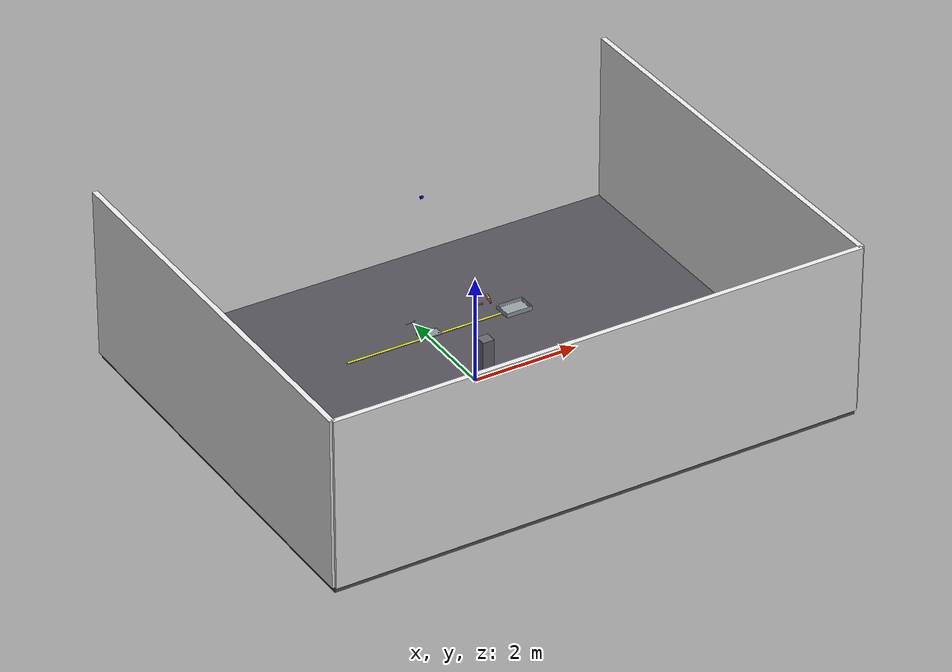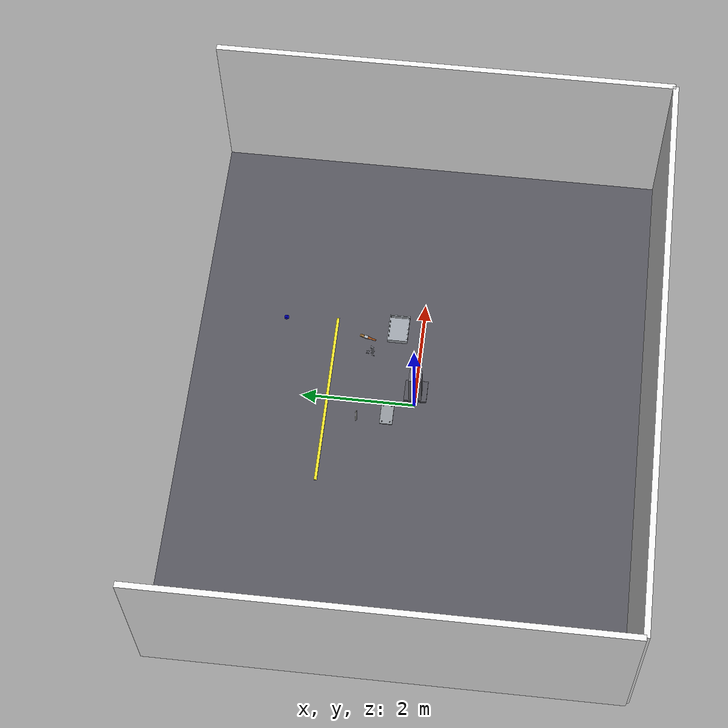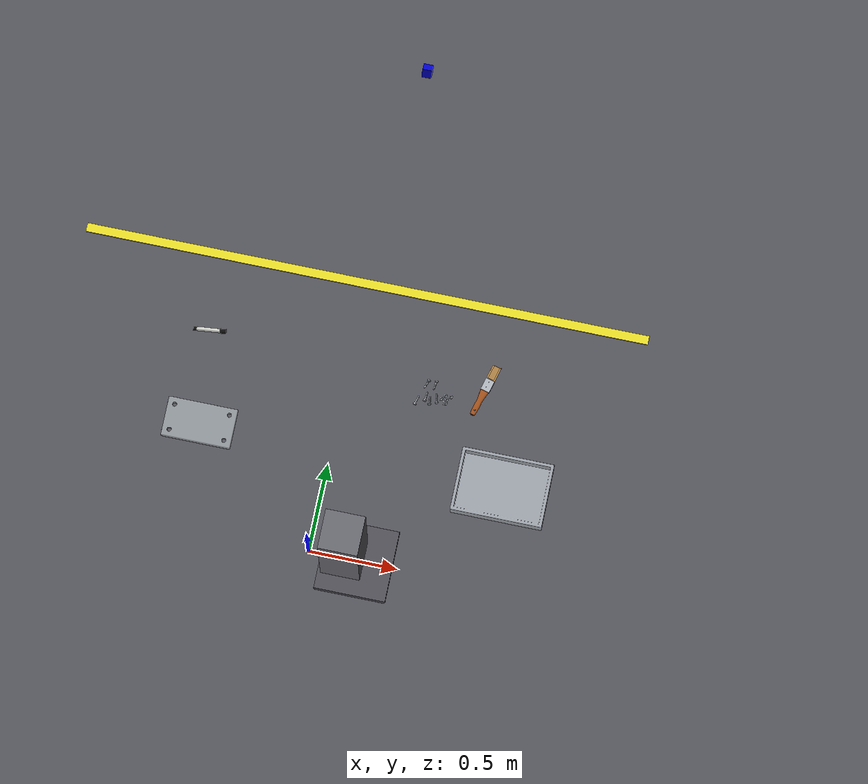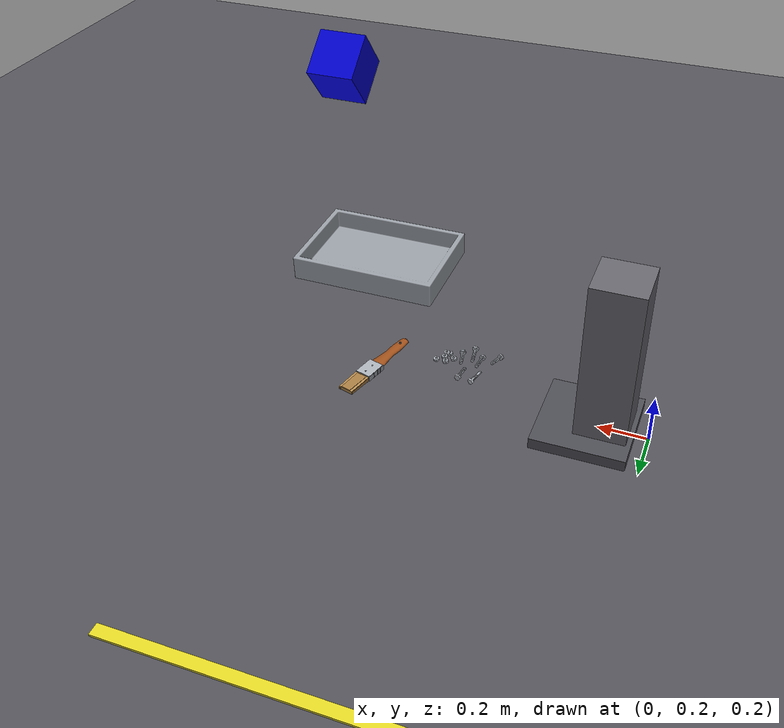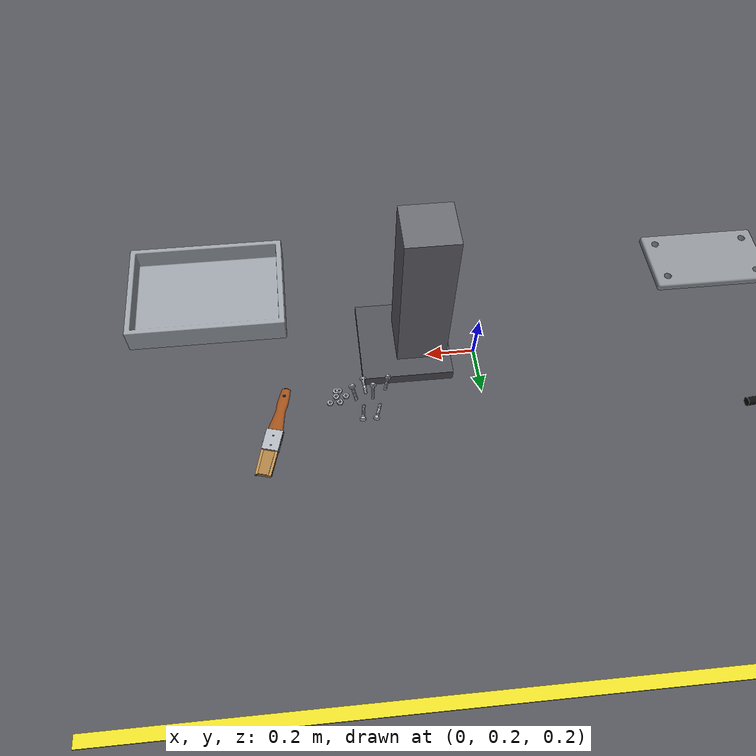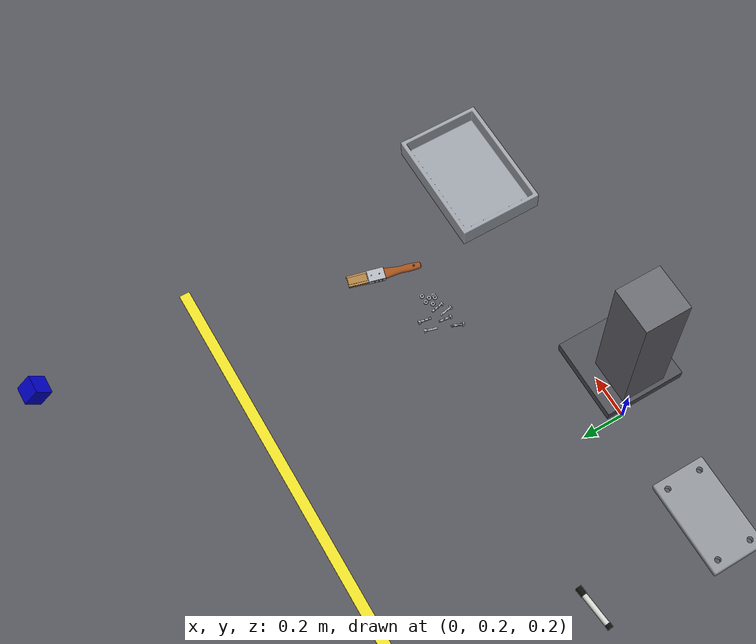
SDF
<sdf version="1.6">
 <world name="workshop_demo">
  <physics type="ode">
   <max_step_size>0.001</max_step_size>
   <real_time_update_rate>1000</real_time_update_rate>
   <gravity>0 0 -9.81</gravity>
  </physics>
  <plugin name="gazebo_ros_state" filename="libgazebo_ros_state.so">
   <ros><namespace>/gazebo</namespace></ros>
   <update_rate>10.0</update_rate>
  </plugin>
  <scene>
   <ambient>0.7 0.7 0.7 1</ambient>
   <background>0.12 0.12 0.14 1</background>
   <shadows>true</shadows>
  </scene>
  <light name="ceiling_light" type="point">
   <pose>0 0 5 0 0 0</pose>
   <diffuse>0.9 0.9 0.9 1</diffuse>
   <specular>0.2 0.2 0.2 1</specular>
   <attenuation>
    <range>20</range>
    <constant>0.7</constant>
    <linear>0.01</linear>
    <quadratic>0.001</quadratic>
   </attenuation>
  </light>
  <model name="workshop_room">
   <static>true</static>
   <link name="room_link">
    <collision name="floor_col">
     <geometry><box><size>10 8 0.10</size></box></geometry>
     <pose>0 0 -0.05 0 0 0</pose>
    </collision>
    <visual name="floor_vis">
     <geometry><box><size>10 8 0.10</size></box></geometry>
     <pose>0 0 -0.05 0 0 0</pose>
     <material>
      <ambient>0.22 0.22 0.24 1</ambient>
      <diffuse>0.32 0.32 0.35 1</diffuse>
      <specular>0.08 0.08 0.08 1</specular>
     </material>
    </visual>
    <collision name="back_col">
     <geometry><box><size>10 0.10 3.2</size></box></geometry>
     <pose>0 -4 1.6 0 0 0</pose>
    </collision>
    <visual name="back_vis">
     <geometry><box><size>10 0.10 3.2</size></box></geometry>
     <pose>0 -4 1.6 0 0 0</pose>
     <material>
      <script><uri>file://media/materials/scripts/gazebo.material</uri><name>Gazebo/White</name></script>
     </material>
    </visual>
    <collision name="left_col">
     <geometry><box><size>0.10 8 3.2</size></box></geometry>
     <pose>-5 0 1.6 0 0 0</pose>
    </collision>
    <visual name="left_vis">
     <geometry><box><size>0.10 8 3.2</size></box></geometry>
     <pose>-5 0 1.6 0 0 0</pose>
     <material>
      <script><uri>file://media/materials/scripts/gazebo.material</uri><name>Gazebo/White</name></script>
     </material>
    </visual>
    <collision name="right_col">
     <geometry><box><size>0.10 8 3.2</size></box></geometry>
     <pose>5 0 1.6 0 0 0</pose>
    </collision>
    <visual name="right_vis">
     <geometry><box><size>0.10 8 3.2</size></box></geometry>
     <pose>5 0 1.6 0 0 0</pose>
     <material>
      <script><uri>file://media/materials/scripts/gazebo.material</uri><name>Gazebo/White</name></script>
     </material>
    </visual>
    <visual name="safety_zone">
     <pose>0 1.55 0.006 0 0 0</pose>
     <geometry><box><size>3.2 0.05 0.01</size></box></geometry>
     <material>
      <script><uri>file://media/materials/scripts/gazebo.material</uri><name>Gazebo/Yellow</name></script>
     </material>
    </visual>
   </link>
  </model>
  <include>
   <uri>model://paint_brush</uri>
   <name>paint_brush</name>
   <pose>0.81 0.93 0.88 3.14 0 1.3</pose>
  </include>
  <include><uri>model://m10_bolt_45</uri><name>bolt1</name><pose>0.55 0.82 0.9 1.5 0 0.2</pose></include>
  <include><uri>model://m10_bolt_45</uri><name>bolt2</name><pose>0.52 0.8 0.9 1.3 0 0.1</pose></include>
  <include><uri>model://m10_bolt_45</uri><name>bolt3</name><pose>0.50 0.82 0.9 1.57 0 -0.1</pose></include>
  <include><uri>model://m10_bolt_45</uri><name>bolt4</name><pose>0.46 0.79 0.9 1.7 0 -0.3</pose></include>
  <include><uri>model://m10_bolt_45</uri><name>bolt5</name><pose>0.53 0.84 0.9 1.57 0 3</pose></include>
  <include><uri>model://m10_bolt_45</uri><name>bolt6</name><pose>0.48 0.84 0.9 1.7 0 2.8</pose></include>
  <include><uri>model://m10_hex_nut</uri><name>nut1</name><pose>0.6 0.82 0.89 0 0 0</pose></include>
  <include><uri>model://m10_hex_nut</uri><name>nut2</name><pose>0.6 0.78 0.89 0 0 0</pose></include>
  <include><uri>model://m10_hex_nut</uri><name>nut3</name><pose>0.58 0.8 0.89 0 0 0</pose></include>
  <include><uri>model://m10_hex_nut</uri><name>nut4</name><pose>0.61 0.8 0.89 0 0 0</pose></include>
  <include><uri>model://m10_hex_nut</uri><name>nut5</name><pose>0.63 0.82 0.89 0 0 0</pose></include>
  <include><uri>model://m10_hex_nut</uri><name>nut6</name><pose>0.61 0.78 0.89 0 0 0</pose></include>
  <include><uri>model://marker_pen</uri><name>marker_pen</name><pose>-0.73 0.92 0.884 0 0 0.1</pose></include>
  <include><uri>model://metal_plate</uri><name>metal_plate</name><pose>-0.66 0.4 0.931 0 0 0</pose></include>
  <include><uri>model://metal_tray</uri><name>metal_tray</name><pose>1 0.38 0.88 0. 0 0</pose></include>
  <model name="robot_pedestal">
   <static>true</static>
   <pose>0.2 0.0 0.0 0 0 0</pose>
   <link name="column">
    <pose>0 0 0.385 0 0 0</pose>
    <collision name="c"><geometry><box><size>0.22 0.22 0.77</size></box></geometry></collision>
    <visual name="v">
     <geometry><box><size>0.22 0.22 0.77</size></box></geometry>
     <material><ambient>0.35 0.35 0.38 1</ambient><diffuse>0.40 0.40 0.43 1</diffuse></material>
    </visual>
   </link>
   <link name="base">
    <pose>0.07 0 0.025 0 0 0</pose>
    <collision name="c"><geometry><box><size>0.40 0.40 0.05</size></box></geometry></collision>
    <visual name="v">
     <geometry><box><size>0.40 0.40 0.05</size></box></geometry>
     <material><ambient>0.25 0.25 0.28 1</ambient><diffuse>0.30 0.30 0.33 1</diffuse></material>
    </visual>
   </link>
  </model>
  <model name="overview_camera">
   <static>true</static>
   <pose>0.23 2.15 2.41 0 0.9 -1.57</pose>
   <link name="camera_link">
    <visual name="vis">
     <geometry><box><size>0.05 0.05 0.05</size></box></geometry>
     <material><ambient>0 0 0.8 1</ambient><diffuse>0 0 0.8 1</diffuse></material>
    </visual>
    <sensor name="overview_camera" type="camera">
     <update_rate>10</update_rate>
     <camera>
      <horizontal_fov>1.047</horizontal_fov>
      <image><width>1280</width><height>960</height><format>R8G8B8</format></image>
      <clip><near>0.05</near><far>7.0</far></clip>
     </camera>
     <plugin name="overview_camera_plugin" filename="libgazebo_ros_camera.so">
      <ros>
       <remapping>~/image_raw:=/overview_camera/image_raw</remapping>
       <remapping>~/camera_info:=/overview_camera/camera_info</remapping>
      </ros>
      <camera_name>overview_camera</camera_name>
      <frame_name>overview_camera_link</frame_name>
     </plugin>
    </sensor>
   </link>
  </model>
 </world>
</sdf>

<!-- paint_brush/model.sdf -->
<sdf version="1.6">
  <model name="paint_brush">
    <static>false</static>
    <link name="brush_link">
      <inertial>
        <mass>0.085</mass>
        <pose>-0.045 0 0 0 0 0</pose>
        <inertia>
          <ixx>0.000020</ixx><iyy>0.00038</iyy><izz>0.00039</izz>
          <ixy>0</ixy><ixz>0</ixz><iyz>0</iyz>
        </inertia>
      </inertial>

      <!-- Wooden handle -->
      <visual name="wood_handle"><geometry><mesh><uri>model://paint_brush/meshes/wood_handle.stl</uri></mesh></geometry><material><ambient>0.28 0.13 0.045 1</ambient><diffuse>0.62 0.31 0.10 1</diffuse><specular>0.08 0.06 0.04 1</specular></material></visual>
      <visual name="handle_end_cap"><geometry><mesh><uri>model://paint_brush/meshes/handle_end_cap.stl</uri></mesh></geometry><material><ambient>0.18 0.07 0.02 1</ambient><diffuse>0.40 0.16 0.05 1</diffuse><specular>0.06 0.04 0.02 1</specular></material></visual>
      <visual name="hole_top"><geometry><mesh><uri>model://paint_brush/meshes/hole_top.stl</uri></mesh></geometry><material><ambient>0.02 0.02 0.02 1</ambient><diffuse>0.03 0.03 0.03 1</diffuse><specular>0.08 0.08 0.08 1</specular></material></visual>
      <visual name="hole_bottom"><geometry><mesh><uri>model://paint_brush/meshes/hole_bottom.stl</uri></mesh></geometry><material><ambient>0.02 0.02 0.02 1</ambient><diffuse>0.03 0.03 0.03 1</diffuse><specular>0.08 0.08 0.08 1</specular></material></visual>

      <!-- Stainless ferrule -->
      <visual name="ferrule_body"><geometry><mesh><uri>model://paint_brush/meshes/ferrule_body.stl</uri></mesh></geometry><material><ambient>0.20 0.21 0.22 1</ambient><diffuse>0.56 0.58 0.61 1</diffuse><specular>0.95 0.95 0.95 1</specular></material></visual>
      <visual name="ferrule_face_top"><geometry><mesh><uri>model://paint_brush/meshes/ferrule_face_top.stl</uri></mesh></geometry><material><ambient>0.28 0.29 0.30 1</ambient><diffuse>0.68 0.70 0.73 1</diffuse><specular>1 1 1 1</specular></material></visual>
      <visual name="ferrule_face_bottom"><geometry><mesh><uri>model://paint_brush/meshes/ferrule_face_bottom.stl</uri></mesh></geometry><material><ambient>0.28 0.29 0.30 1</ambient><diffuse>0.68 0.70 0.73 1</diffuse><specular>1 1 1 1</specular></material></visual>
      <visual name="crimp1"><geometry><mesh><uri>model://paint_brush/meshes/ferrule_crimp_1.stl</uri></mesh></geometry><material><ambient>0.11 0.12 0.13 1</ambient><diffuse>0.34 0.36 0.39 1</diffuse><specular>0.85 0.85 0.85 1</specular></material></visual>
      <visual name="crimp2"><geometry><mesh><uri>model://paint_brush/meshes/ferrule_crimp_2.stl</uri></mesh></geometry><material><ambient>0.11 0.12 0.13 1</ambient><diffuse>0.34 0.36 0.39 1</diffuse><specular>0.85 0.85 0.85 1</specular></material></visual>
      <visual name="crimp3"><geometry><mesh><uri>model://paint_brush/meshes/ferrule_crimp_3.stl</uri></mesh></geometry><material><ambient>0.11 0.12 0.13 1</ambient><diffuse>0.34 0.36 0.39 1</diffuse><specular>0.85 0.85 0.85 1</specular></material></visual>
      <visual name="rivet_top_1"><geometry><mesh><uri>model://paint_brush/meshes/rivet_top_1.stl</uri></mesh></geometry><material><ambient>0.17 0.17 0.18 1</ambient><diffuse>0.48 0.49 0.51 1</diffuse><specular>1 1 1 1</specular></material></visual>
      <visual name="rivet_top_2"><geometry><mesh><uri>model://paint_brush/meshes/rivet_top_2.stl</uri></mesh></geometry><material><ambient>0.17 0.17 0.18 1</ambient><diffuse>0.48 0.49 0.51 1</diffuse><specular>1 1 1 1</specular></material></visual>
      <visual name="rivet_bottom_1"><geometry><mesh><uri>model://paint_brush/meshes/rivet_bottom_1.stl</uri></mesh></geometry><material><ambient>0.17 0.17 0.18 1</ambient><diffuse>0.48 0.49 0.51 1</diffuse><specular>1 1 1 1</specular></material></visual>
      <visual name="rivet_bottom_2"><geometry><mesh><uri>model://paint_brush/meshes/rivet_bottom_2.stl</uri></mesh></geometry><material><ambient>0.17 0.17 0.18 1</ambient><diffuse>0.48 0.49 0.51 1</diffuse><specular>1 1 1 1</specular></material></visual>

      <!-- Natural bristles -->
      <visual name="bristles_center"><geometry><mesh><uri>model://paint_brush/meshes/bristles_center.stl</uri></mesh></geometry><material><ambient>0.30 0.21 0.11 1</ambient><diffuse>0.72 0.55 0.31 1</diffuse><specular>0.04 0.04 0.03 1</specular></material></visual>
      <visual name="bristles_side_l"><geometry><mesh><uri>model://paint_brush/meshes/bristles_side_l.stl</uri></mesh></geometry><material><ambient>0.23 0.16 0.08 1</ambient><diffuse>0.58 0.42 0.21 1</diffuse><specular>0.03 0.03 0.02 1</specular></material></visual>
      <visual name="bristles_side_r"><geometry><mesh><uri>model://paint_brush/meshes/bristles_side_r.stl</uri></mesh></geometry><material><ambient>0.25 0.18 0.09 1</ambient><diffuse>0.62 0.46 0.24 1</diffuse><specular>0.03 0.03 0.02 1</specular></material></visual>
      <visual name="bristles_top"><geometry><mesh><uri>model://paint_brush/meshes/bristles_top.stl</uri></mesh></geometry><material><ambient>0.33 0.24 0.13 1</ambient><diffuse>0.76 0.59 0.34 1</diffuse><specular>0.03 0.03 0.02 1</specular></material></visual>
      <visual name="bristles_bottom"><geometry><mesh><uri>model://paint_brush/meshes/bristles_bottom.stl</uri></mesh></geometry><material><ambient>0.27 0.19 0.10 1</ambient><diffuse>0.66 0.49 0.26 1</diffuse><specular>0.03 0.03 0.02 1</specular></material></visual>

      <!-- Simplified collision: handle + ferrule/bristle region -->
      <collision name="handle_collision"><pose>-0.112 0 0 0 0 0</pose><geometry><box><size>0.148 0.043 0.020</size></box></geometry><surface><friction><ode><mu>1.0</mu><mu2>1.0</mu2></ode></friction></surface></collision>
      <collision name="head_collision"><pose>0.036 0 0 0 0 0</pose><geometry><box><size>0.145 0.053 0.019</size></box></geometry><surface><friction><ode><mu>1.0</mu><mu2>1.0</mu2></ode></friction></surface></collision>

      <velocity_decay><linear>0.06</linear><angular>0.12</angular></velocity_decay>
    </link>
  </model>
</sdf>

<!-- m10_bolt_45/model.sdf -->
<sdf version="1.6">
  <model name="m10_bolt_45">
    <static>false</static>
    <link name="link">
      <inertial>
        <pose>1.04783003e-11 1.63526165e-12 0.0332027193 0 0 0</pose>
        <mass>0.0320162649</mass>
        <inertia>
          <ixx>8.7585218e-06</ixx><ixy>-1.60172283e-15</ixy><ixz>7.23979086e-15</ixz>
          <iyy>8.7585216e-06</iyy><iyz>-1.47963772e-10</iyz><izz>6.84316726e-07</izz>
        </inertia>
      </inertial>
      <visual name="threaded_visual">
        <geometry><mesh><uri>model://m10_bolt_45/meshes/m10_bolt_45.stl</uri><scale>0.001 0.001 0.001</scale></mesh></geometry>
        <material>
          <ambient>0.42 0.43 0.45 1</ambient>
          <diffuse>0.68 0.70 0.73 1</diffuse>
          <specular>0.85 0.85 0.85 1</specular>
        </material>
      </visual>
      <collision name="shaft_collision">
        <pose>0 0 0.022500 0 0 0</pose>
        <geometry><cylinder><radius>0.004600</radius><length>0.045000</length></cylinder></geometry>
        <surface><friction><ode><mu>0.8</mu><mu2>0.8</mu2></ode></friction></surface>
      </collision>
      <collision name="head_collision">
        <pose>0 0 0.048425 0 0 0</pose>
        <geometry><cylinder><radius>0.009815</radius><length>0.006850</length></cylinder></geometry>
        <surface><friction><ode><mu>0.8</mu><mu2>0.8</mu2></ode></friction></surface>
      </collision>
      <velocity_decay><linear>0.03</linear><angular>0.05</angular></velocity_decay>
    </link>
  </model>
</sdf>

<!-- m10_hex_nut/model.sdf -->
<sdf version="1.6">
  <model name="m10_hex_nut">
    <static>false</static>
    <link name="link">
      <inertial>
        <pose>-4.90902755e-08 -1.50537393e-07 0.00399999893 0 0 0</pose>
        <mass>0.0114247716</mass>
        <inertia>
          <ixx>3.26999519e-07</ixx><ixy>-2.31322333e-12</ixy><ixz>3.03646231e-11</ixz>
          <iyy>3.2699297e-07</iyy><iyz>-9.89915851e-12</iyz><izz>5.51279197e-07</izz>
        </inertia>
      </inertial>
      <visual name="threaded_visual">
        <geometry><mesh><uri>model://m10_hex_nut/meshes/m10_hex_nut.stl</uri><scale>0.001 0.001 0.001</scale></mesh></geometry>
        <material>
          <ambient>0.42 0.43 0.45 1</ambient>
          <diffuse>0.68 0.70 0.73 1</diffuse>
          <specular>0.85 0.85 0.85 1</specular>
        </material>
      </visual>
      <collision name="nut_collision">
        <pose>0 0 0.004000 0 0 0</pose>
        <geometry><cylinder><radius>0.009815</radius><length>0.008000</length></cylinder></geometry>
        <surface><friction><ode><mu>0.8</mu><mu2>0.8</mu2></ode></friction></surface>
      </collision>
      <velocity_decay><linear>0.03</linear><angular>0.05</angular></velocity_decay>
    </link>
  </model>
</sdf>

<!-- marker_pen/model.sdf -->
<sdf version="1.6"><model name="marker_pen"><static>false</static><link name="link"><visual name="body"><geometry><mesh><uri>model://marker_pen/meshes/marker_body.stl</uri></mesh></geometry><material><ambient>0.82 0.82 0.8 1</ambient><diffuse>0.82 0.82 0.8 1</diffuse><specular>0.08 0.08 0.08 1</specular></material></visual><visual name="cap"><geometry><mesh><uri>model://marker_pen/meshes/marker_cap.stl</uri></mesh></geometry><material><ambient>0.05 0.05 0.05 1</ambient><diffuse>0.05 0.05 0.05 1</diffuse><specular>0.08 0.08 0.08 1</specular></material></visual><visual name="end"><geometry><mesh><uri>model://marker_pen/meshes/marker_end.stl</uri></mesh></geometry><material><ambient>0.05 0.05 0.05 1</ambient><diffuse>0.05 0.05 0.05 1</diffuse><specular>0.08 0.08 0.08 1</specular></material></visual><inertial><mass>0.03</mass><inertia><ixx>0.000005</ixx><iyy>0.000075</iyy><izz>0.000075</izz><ixy>0</ixy><ixz>0</ixz><iyz>0</iyz></inertia></inertial><collision name="pen"><pose>0 0 0 0 1.5708 0</pose><geometry><cylinder><radius>0.013</radius><length>0.16</length></cylinder></geometry></collision></link></model></sdf>

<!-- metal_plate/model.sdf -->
<sdf version="1.6"><model name="metal_plate"><static>false</static><link name="link"><visual name="plate"><geometry><mesh><uri>model://metal_plate/meshes/metal_plate.stl</uri></mesh></geometry><material><ambient>0.55 0.57 0.59 1</ambient><diffuse>0.55 0.57 0.59 1</diffuse><specular>0.08 0.08 0.08 1</specular></material></visual><inertial><mass>0.8</mass><inertia><ixx>0.003268</ixx><iyy>0.009668</iyy><izz>0.012853</izz><ixy>0</ixy><ixz>0</ixz><iyz>0</iyz></inertia></inertial><collision name="plate"><geometry><box><size>0.38 0.22 0.025</size></box></geometry></collision></link></model></sdf>

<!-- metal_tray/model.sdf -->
<sdf version="1.6"><model name="metal_tray"><static>false</static>
<link name="link"><visual name="tray">
  <geometry><mesh><uri>model://metal_tray/meshes/metal_tray.stl</uri></mesh></geometry>
  <material>
  <ambient>0.18 0.19 0.20 1</ambient>
  <diffuse>0.60 0.62 0.65 1</diffuse>
  <specular>1.0 1.0 1.0 1</specular>
</material>
</visual><inertial><mass>0.9</mass><inertia><ixx>0.01308</ixx><iyy>0.023768</iyy><izz>0.034688</izz><ixy>0</ixy><ixz>0</ixz><iyz>0</iyz></inertia></inertial><collision name="bottom"><pose>0 0 0.009 0 0 0</pose><geometry><box><size>0.50 0.35 0.018</size></box></geometry></collision></link></model></sdf>
